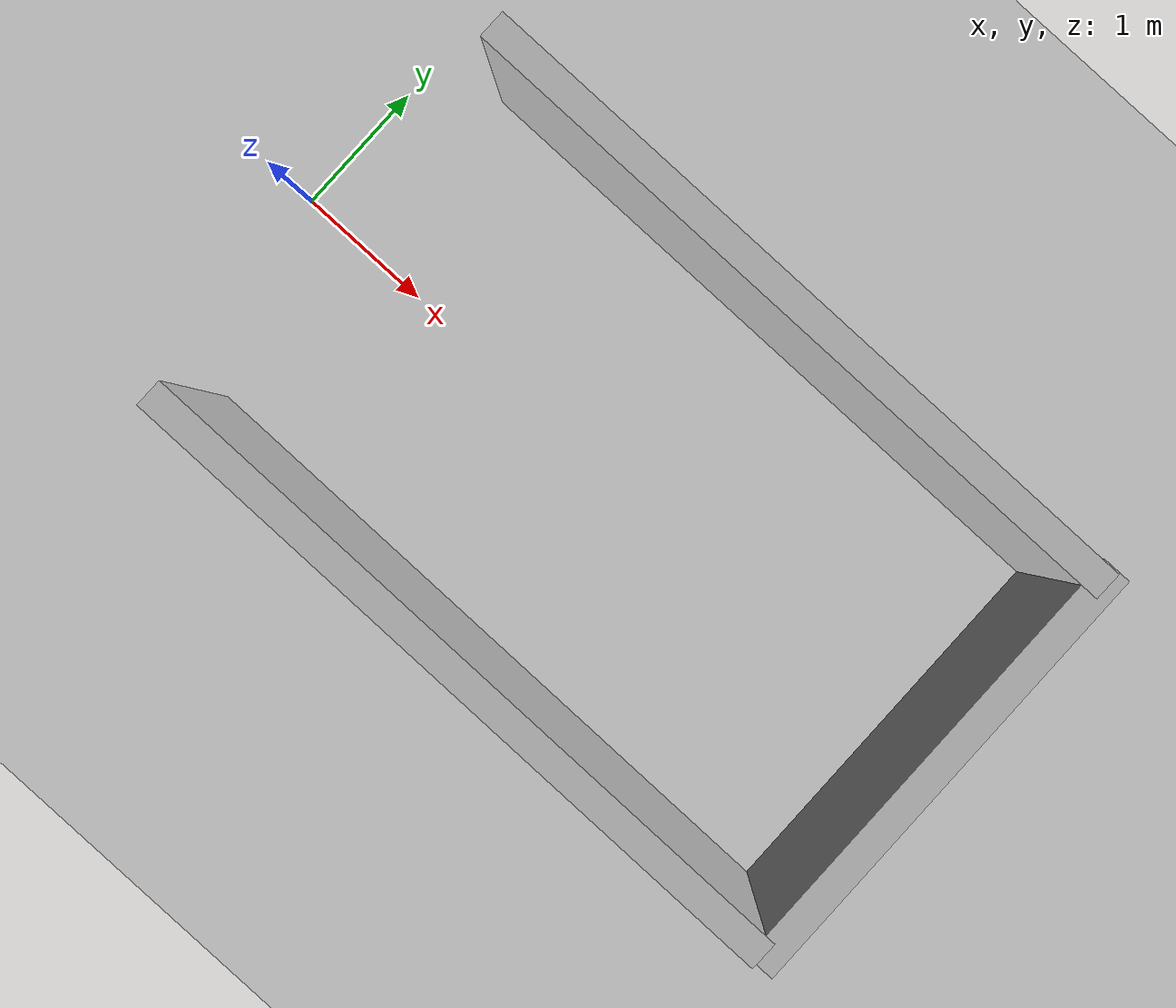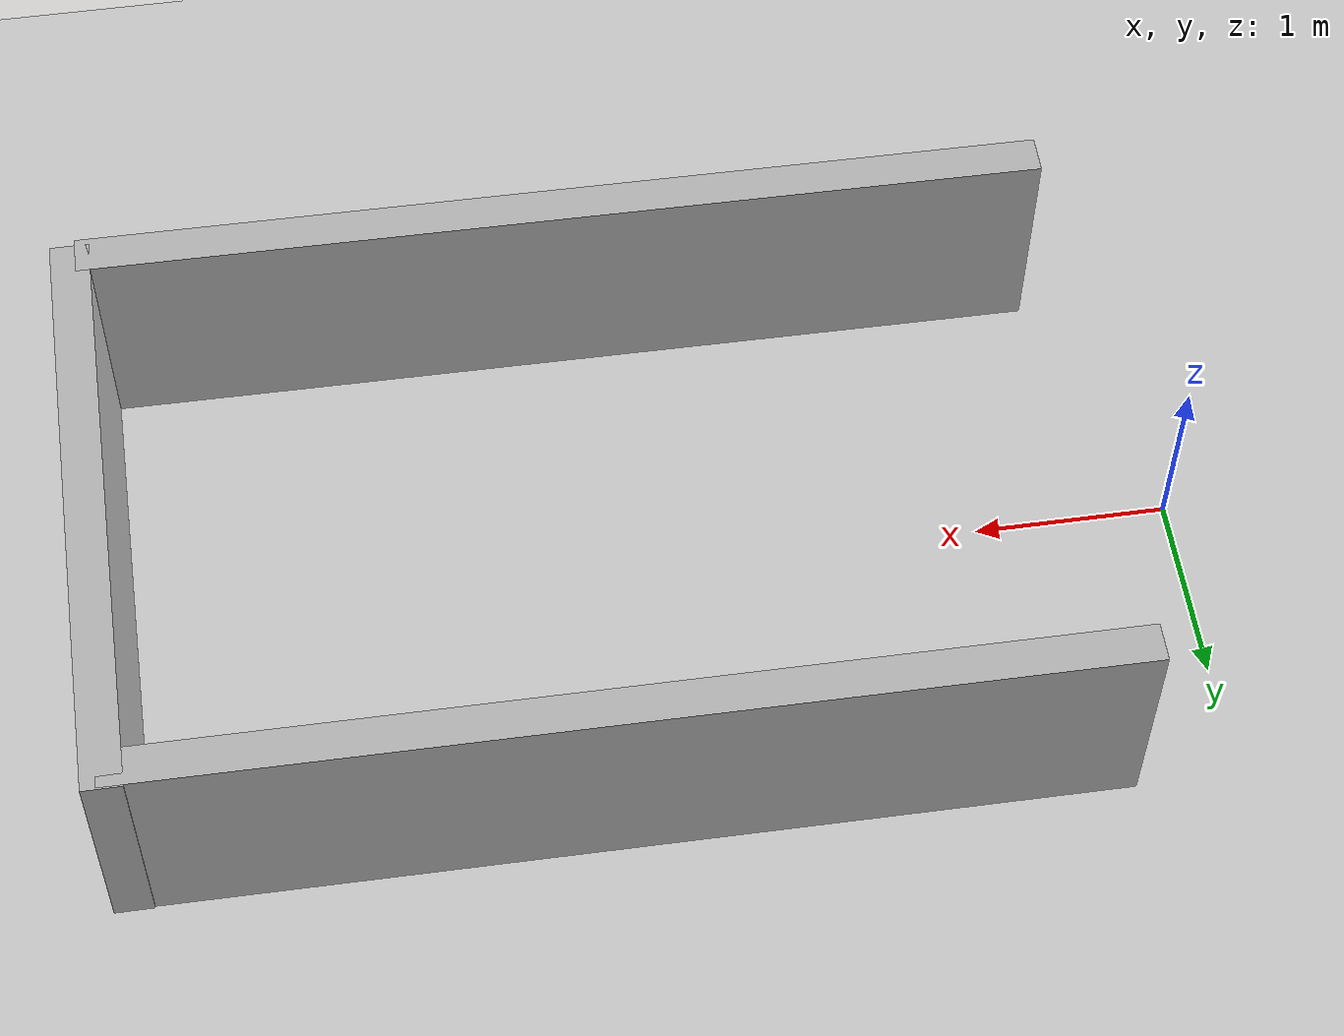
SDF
<?xml version="1.0"?>
<sdf version="1.6">
  <world name="v2-04c-r-maneuver-s4510">
    <gravity>0 0 -9.81</gravity>
    <physics name="v2_deterministic" type="ode">
      <max_step_size>0.002</max_step_size>
      <real_time_update_rate>500</real_time_update_rate>
    </physics>
    <include>
      <uri>model://sun</uri>
    </include>
    <include>
      <uri>model://ground_plane</uri>
    </include>
    <model name="r-bay-left">
      <static>true</static>
      <pose>3.017495165 1.502227455 0.600000000 0 0 -0.003287158</pose>
      <link name="link">
        <collision name="collision">
          <geometry>
            <box>
              <size>5.000000 0.200000 1.200000</size>
            </box>
          </geometry>
        </collision>
        <visual name="visual">
          <geometry>
            <box>
              <size>5.000000 0.200000 1.200000</size>
            </box>
          </geometry>
        </visual>
      </link>
    </model>
    <model name="r-bay-right">
      <static>true</static>
      <pose>2.976089165 -1.519094959 0.600000000 0 0 -0.004818457</pose>
      <link name="link">
        <collision name="collision">
          <geometry>
            <box>
              <size>5.000000 0.200000 1.200000</size>
            </box>
          </geometry>
        </collision>
        <visual name="visual">
          <geometry>
            <box>
              <size>5.000000 0.200000 1.200000</size>
            </box>
          </geometry>
        </visual>
      </link>
    </model>
    <model name="r-bay-back">
      <static>true</static>
      <pose>5.497245638 0.003019000 0.600000000 0 0 0.003414077</pose>
      <link name="link">
        <collision name="collision">
          <geometry>
            <box>
              <size>0.200000 3.200000 1.200000</size>
            </box>
          </geometry>
        </collision>
        <visual name="visual">
          <geometry>
            <box>
              <size>0.200000 3.200000 1.200000</size>
            </box>
          </geometry>
        </visual>
      </link>
    </model>
  </world>
</sdf>
